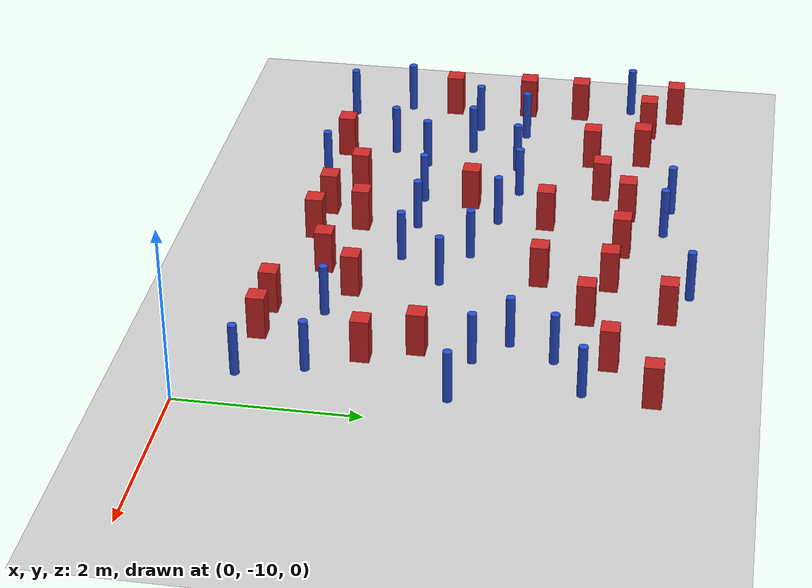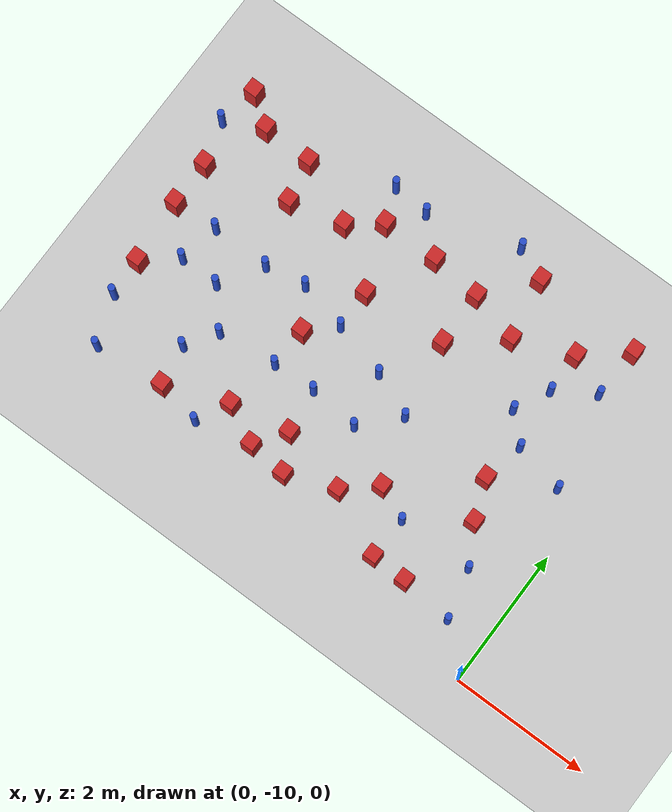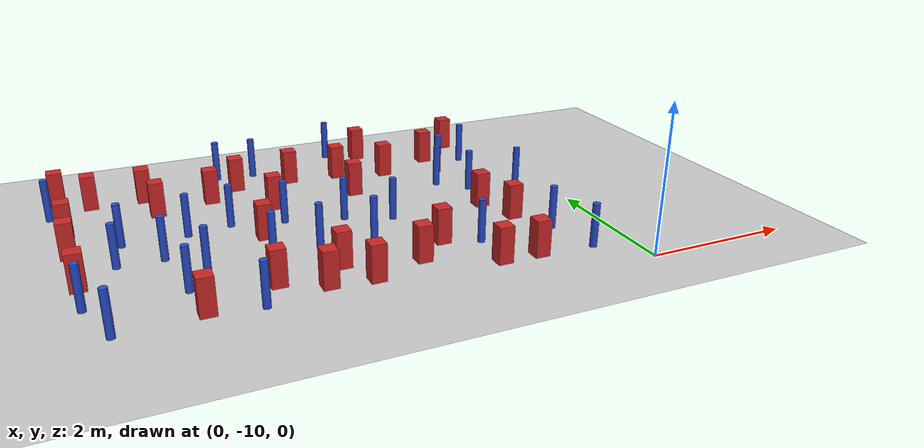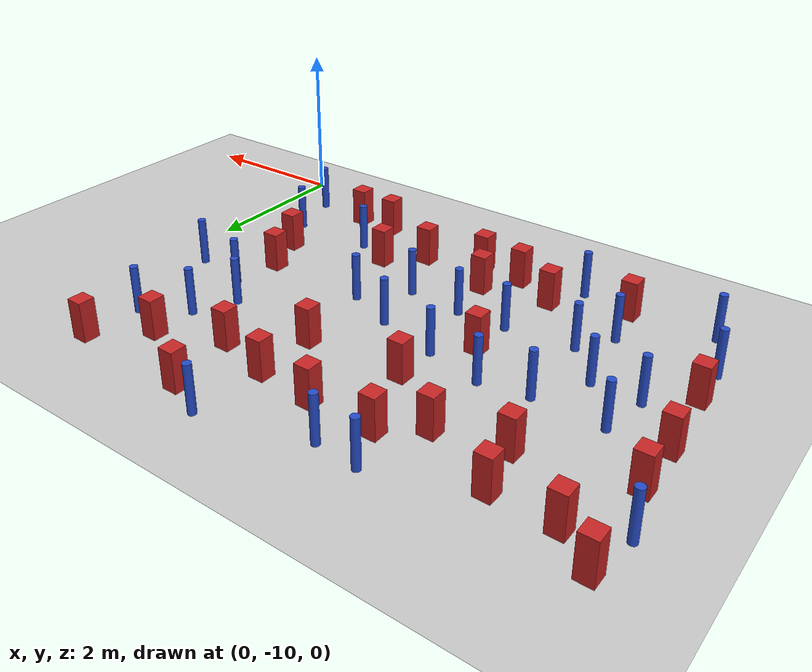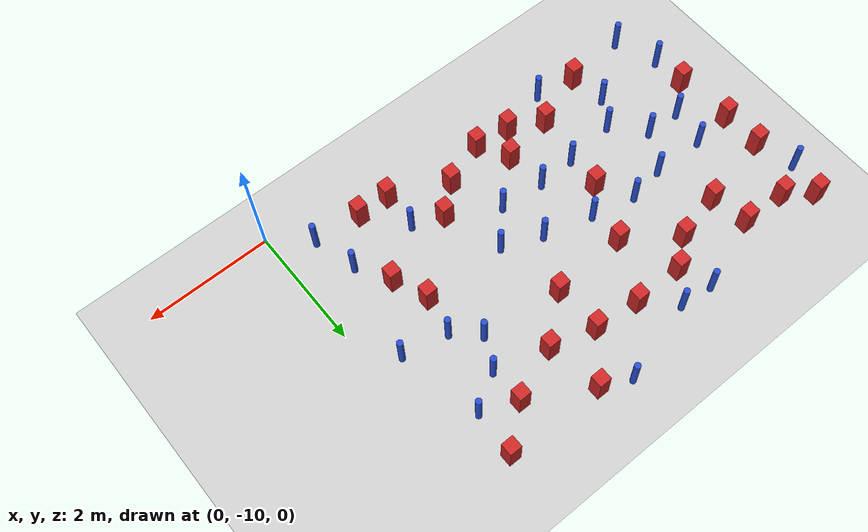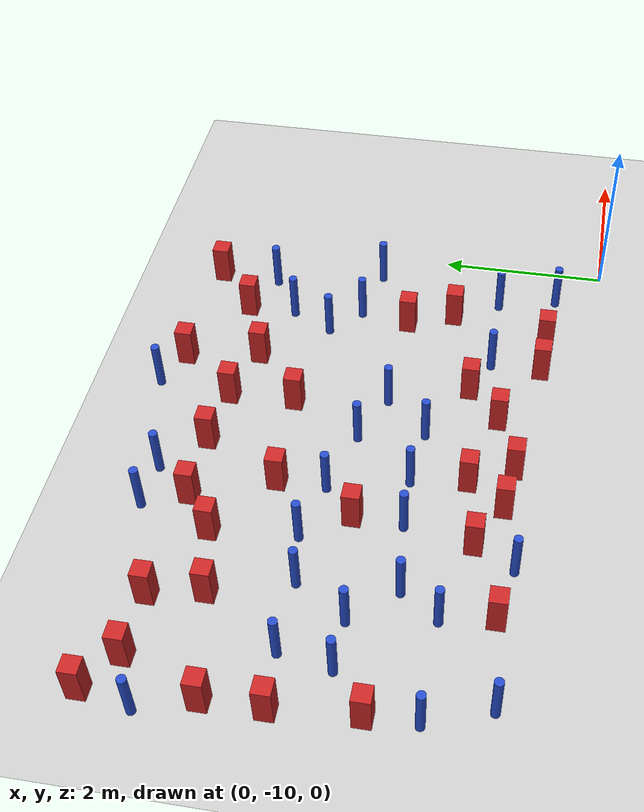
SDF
<sdf version="1.6">
 <world name="default">
  <model name="ground_plane">
   <static>1</static>
   <link name="link">
    <collision name="collision">
     <geometry><plane><normal>0 0 1</normal><size>100 100</size></plane></geometry>
     <surface><friction><ode><mu>100</mu><mu2>50</mu2></ode></friction></surface>
    </collision>
    <visual name="visual">
     <cast_shadows>0</cast_shadows>
     <geometry><plane><normal>0 0 1</normal><size>100 100</size></plane></geometry>
     <material>
      <ambient>1.0 1.0 1.0 1.0</ambient>
      <diffuse>0.8 0.8 0.8 1.0</diffuse>
      <specular>0.01 0.01 0.01 1.000000</specular>
     </material>
    </visual>
   </link>
  </model>
  <model name="square_post_obstacle0">
   <static>true</static>
   <pose>-2.72196914421 -8.94715219982 1.91545236811e-07 -7.35059704564e-06 1.12565212e-07 2.39332434364e-05</pose>
   <link name="link">
    <pose>0 0 0.25 0 -0 0</pose>
    <inertial>
     <mass>100</mass>
     <inertia>
      <ixx>0.166667</ixx>
      <ixy>0</ixy>
      <ixz>0</ixz>
      <iyy>0.166667</iyy>
      <iyz>0</iyz>
      <izz>0.166667</izz>
     </inertia>
    </inertial>
    <collision name="collision"><geometry><box><size>.2 .2 .5</size></box></geometry></collision>
    <visual name="visual">
     <geometry><box><size>.2 .2 .5</size></box></geometry>
     <material>
      <script><name>Gazebo/Red</name><uri>file://media/materials/scripts/gazebo.material</uri></script>
     </material>
    </visual>
   </link>
  </model>
  <model name="pole_obstacle1">
   <static>true</static>
   <pose>-4.78363985501 -9.33269308736 7.38925637345e-09 -8.471706928e-08 1.24976765081e-08 -1.74513093015e-07</pose>
   <link name="link">
    <pose>0 0 0.3 0 -0 0</pose>
    <inertial>
     <mass>1</mass>
     <inertia><ixx>0.145833</ixx><ixy>0</ixy><ixz>0</ixz><iyy>0.145833</iyy><iyz>0</iyz><izz>0.125</izz></inertia>
    </inertial>
    <collision name="collision">
     <geometry><cylinder><radius>0.05</radius><length>.6</length></cylinder></geometry>
    </collision>
    <visual name="visual">
     <geometry><cylinder><radius>0.05</radius><length>.6</length></cylinder></geometry>
     <material>
      <script><name>Gazebo/Blue</name><uri>file://media/materials/scripts/gazebo.material</uri></script>
     </material>
    </visual>
   </link>
  </model>
  <model name="square_post_obstacle4">
   <static>true</static>
   <pose>-2.28867185093 -8.56511000376 1.91545236811e-07 -7.35059704564e-06 1.12565212e-07 2.39332434364e-05</pose>
   <link name="link">
    <pose>0 0 0.25 0 -0 0</pose>
    <inertial>
     <mass>100</mass>
     <inertia>
      <ixx>0.166667</ixx>
      <ixy>0</ixy>
      <ixz>0</ixz>
      <iyy>0.166667</iyy>
      <iyz>0</iyz>
      <izz>0.166667</izz>
     </inertia>
    </inertial>
    <collision name="collision"><geometry><box><size>.2 .2 .5</size></box></geometry></collision>
    <visual name="visual">
     <geometry><box><size>.2 .2 .5</size></box></geometry>
     <material>
      <script><name>Gazebo/Red</name><uri>file://media/materials/scripts/gazebo.material</uri></script>
     </material>
    </visual>
   </link>
  </model>
  <model name="pole_obstacle6">
   <static>true</static>
   <pose>-5.66873293021 -7.7020765996 7.38925637345e-09 -8.47170692796e-08 1.24976764786e-08 -1.74513093032e-07</pose>
   <link name="link">
    <pose>0 0 0.3 0 -0 0</pose>
    <inertial>
     <mass>1</mass>
     <inertia><ixx>0.145833</ixx><ixy>0</ixy><ixz>0</ixz><iyy>0.145833</iyy><iyz>0</iyz><izz>0.125</izz></inertia>
    </inertial>
    <collision name="collision">
     <geometry><cylinder><radius>0.05</radius><length>.6</length></cylinder></geometry>
    </collision>
    <visual name="visual">
     <geometry><cylinder><radius>0.05</radius><length>.6</length></cylinder></geometry>
     <material>
      <script><name>Gazebo/Blue</name><uri>file://media/materials/scripts/gazebo.material</uri></script>
     </material>
    </visual>
   </link>
  </model>
  <model name="square_post_obstacle9">
   <static>true</static>
   <pose>-1.83106728129 -9.37195431687 1.91545236811e-07 -7.35059704564e-06 1.12565212e-07 2.39332434364e-05</pose>
   <link name="link">
    <pose>0 0 0.25 0 -0 0</pose>
    <inertial>
     <mass>100</mass>
     <inertia>
      <ixx>0.166667</ixx>
      <ixy>0</ixy>
      <ixz>0</ixz>
      <iyy>0.166667</iyy>
      <iyz>0</iyz>
      <izz>0.166667</izz>
     </inertia>
    </inertial>
    <collision name="collision"><geometry><box><size>.2 .2 .5</size></box></geometry></collision>
    <visual name="visual">
     <geometry><box><size>.2 .2 .5</size></box></geometry>
     <material>
      <script><name>Gazebo/Red</name><uri>file://media/materials/scripts/gazebo.material</uri></script>
     </material>
    </visual>
   </link>
  </model>
  <model name="square_post_obstacle17">
   <static>true</static>
   <pose>-2.24844355301 -5.09677401196 1.91545236811e-07 -7.35059704564e-06 1.12565212e-07 2.39332434364e-05</pose>
   <link name="link">
    <pose>0 0 0.25 0 -0 0</pose>
    <inertial>
     <mass>100</mass>
     <inertia>
      <ixx>0.166667</ixx>
      <ixy>0</ixy>
      <ixz>0</ixz>
      <iyy>0.166667</iyy>
      <iyz>0</iyz>
      <izz>0.166667</izz>
     </inertia>
    </inertial>
    <collision name="collision"><geometry><box><size>.2 .2 .5</size></box></geometry></collision>
    <visual name="visual">
     <geometry><box><size>.2 .2 .5</size></box></geometry>
     <material>
      <script><name>Gazebo/Red</name><uri>file://media/materials/scripts/gazebo.material</uri></script>
     </material>
    </visual>
   </link>
  </model>
  <model name="square_post_obstacle19">
   <static>true</static>
   <pose>-3.42885709103 -9.20270909468 1.91545236811e-07 -7.35059704564e-06 1.12565212e-07 2.39332434364e-05</pose>
   <link name="link">
    <pose>0 0 0.25 0 -0 0</pose>
    <inertial>
     <mass>100</mass>
     <inertia>
      <ixx>0.166667</ixx>
      <ixy>0</ixy>
      <ixz>0</ixz>
      <iyy>0.166667</iyy>
      <iyz>0</iyz>
      <izz>0.166667</izz>
     </inertia>
    </inertial>
    <collision name="collision"><geometry><box><size>.2 .2 .5</size></box></geometry></collision>
    <visual name="visual">
     <geometry><box><size>.2 .2 .5</size></box></geometry>
     <material>
      <script><name>Gazebo/Red</name><uri>file://media/materials/scripts/gazebo.material</uri></script>
     </material>
    </visual>
   </link>
  </model>
  <model name="square_post_obstacle20">
   <static>true</static>
   <pose>-6.6940815268 -8.06986607838 1.91545236811e-07 -7.35059704564e-06 1.12565212e-07 2.39332434364e-05</pose>
   <link name="link">
    <pose>0 0 0.25 0 -0 0</pose>
    <inertial>
     <mass>100</mass>
     <inertia>
      <ixx>0.166667</ixx>
      <ixy>0</ixy>
      <ixz>0</ixz>
      <iyy>0.166667</iyy>
      <iyz>0</iyz>
      <izz>0.166667</izz>
     </inertia>
    </inertial>
    <collision name="collision"><geometry><box><size>.2 .2 .5</size></box></geometry></collision>
    <visual name="visual">
     <geometry><box><size>.2 .2 .5</size></box></geometry>
     <material>
      <script><name>Gazebo/Red</name><uri>file://media/materials/scripts/gazebo.material</uri></script>
     </material>
    </visual>
   </link>
  </model>
  <model name="pole_obstacle13">
   <static>true</static>
   <pose>-4.0118841569 -5.26021638834 7.38925637345e-09 -8.47170692795e-08 1.24976764731e-08 -1.74513093035e-07</pose>
   <link name="link">
    <pose>0 0 0.3 0 -0 0</pose>
    <inertial>
     <mass>1</mass>
     <inertia><ixx>0.145833</ixx><ixy>0</ixy><ixz>0</ixz><iyy>0.145833</iyy><iyz>0</iyz><izz>0.125</izz></inertia>
    </inertial>
    <collision name="collision">
     <geometry><cylinder><radius>0.05</radius><length>.6</length></cylinder></geometry>
    </collision>
    <visual name="visual">
     <geometry><cylinder><radius>0.05</radius><length>.6</length></cylinder></geometry>
     <material>
      <script><name>Gazebo/Blue</name><uri>file://media/materials/scripts/gazebo.material</uri></script>
     </material>
    </visual>
   </link>
  </model>
  <model name="pole_obstacle15">
   <static>true</static>
   <pose>-3.21810793898 -7.3811355036 7.38925637345e-09 -8.47170692798e-08 1.24976765033e-08 -1.74513093019e-07</pose>
   <link name="link">
    <pose>0 0 0.3 0 -0 0</pose>
    <inertial>
     <mass>1</mass>
     <inertia><ixx>0.145833</ixx><ixy>0</ixy><ixz>0</ixz><iyy>0.145833</iyy><iyz>0</iyz><izz>0.125</izz></inertia>
    </inertial>
    <collision name="collision">
     <geometry><cylinder><radius>0.05</radius><length>.6</length></cylinder></geometry>
    </collision>
    <visual name="visual">
     <geometry><cylinder><radius>0.05</radius><length>.6</length></cylinder></geometry>
     <material>
      <script><name>Gazebo/Blue</name><uri>file://media/materials/scripts/gazebo.material</uri></script>
     </material>
    </visual>
   </link>
  </model>
  <model name="square_post_obstacle28">
   <static>true</static>
   <pose>-3.69104131438 -8.71325442709 1.91545236811e-07 -7.35059704564e-06 1.12565212e-07 2.39332434364e-05</pose>
   <link name="link">
    <pose>0 0 0.25 0 -0 0</pose>
    <inertial>
     <mass>100</mass>
     <inertia>
      <ixx>0.166667</ixx>
      <ixy>0</ixy>
      <ixz>0</ixz>
      <iyy>0.166667</iyy>
      <iyz>0</iyz>
      <izz>0.166667</izz>
     </inertia>
    </inertial>
    <collision name="collision"><geometry><box><size>.2 .2 .5</size></box></geometry></collision>
    <visual name="visual">
     <geometry><box><size>.2 .2 .5</size></box></geometry>
     <material>
      <script><name>Gazebo/Red</name><uri>file://media/materials/scripts/gazebo.material</uri></script>
     </material>
    </visual>
   </link>
  </model>
  <model name="pole_obstacle31">
   <static>true</static>
   <pose>-1.14555180863 -7.06398034001 7.38925637345e-09 -8.47170692799e-08 1.24976765033e-08 -1.74513093018e-07</pose>
   <link name="link">
    <pose>0 0 0.3 0 -0 0</pose>
    <inertial>
     <mass>1</mass>
     <inertia><ixx>0.145833</ixx><ixy>0</ixy><ixz>0</ixz><iyy>0.145833</iyy><iyz>0</iyz><izz>0.125</izz></inertia>
    </inertial>
    <collision name="collision">
     <geometry><cylinder><radius>0.05</radius><length>.6</length></cylinder></geometry>
    </collision>
    <visual name="visual">
     <geometry><cylinder><radius>0.05</radius><length>.6</length></cylinder></geometry>
     <material>
      <script><name>Gazebo/Blue</name><uri>file://media/materials/scripts/gazebo.material</uri></script>
     </material>
    </visual>
   </link>
  </model>
  <model name="pole_obstacle36">
   <static>true</static>
   <pose>-1.26735621203 -6.21670635428 7.38925637345e-09 -8.47170692799e-08 1.24976765033e-08 -1.74513093018e-07</pose>
   <link name="link">
    <pose>0 0 0.3 0 -0 0</pose>
    <inertial>
     <mass>1</mass>
     <inertia><ixx>0.145833</ixx><ixy>0</ixy><ixz>0</ixz><iyy>0.145833</iyy><iyz>0</iyz><izz>0.125</izz></inertia>
    </inertial>
    <collision name="collision">
     <geometry><cylinder><radius>0.05</radius><length>.6</length></cylinder></geometry>
    </collision>
    <visual name="visual">
     <geometry><cylinder><radius>0.05</radius><length>.6</length></cylinder></geometry>
     <material>
      <script><name>Gazebo/Blue</name><uri>file://media/materials/scripts/gazebo.material</uri></script>
     </material>
    </visual>
   </link>
  </model>
  <model name="square_post_obstacle39">
   <static>true</static>
   <pose>-0.693819695656 -5.1502826747 1.91545236811e-07 -7.35059704564e-06 1.12565212e-07 2.39332434364e-05</pose>
   <link name="link">
    <pose>0 0 0.25 0 -0 0</pose>
    <inertial>
     <mass>100</mass>
     <inertia>
      <ixx>0.166667</ixx>
      <ixy>0</ixy>
      <ixz>0</ixz>
      <iyy>0.166667</iyy>
      <iyz>0</iyz>
      <izz>0.166667</izz>
     </inertia>
    </inertial>
    <collision name="collision"><geometry><box><size>.2 .2 .5</size></box></geometry></collision>
    <visual name="visual">
     <geometry><box><size>.2 .2 .5</size></box></geometry>
     <material>
      <script><name>Gazebo/Red</name><uri>file://media/materials/scripts/gazebo.material</uri></script>
     </material>
    </visual>
   </link>
  </model>
  <model name="pole_obstacle40">
   <static>true</static>
   <pose>-6.42894816302 -9.30552408685 7.38925637345e-09 -8.471706928e-08 1.24976765081e-08 -1.74513093015e-07</pose>
   <link name="link">
    <pose>0 0 0.3 0 -0 0</pose>
    <inertial>
     <mass>1</mass>
     <inertia><ixx>0.145833</ixx><ixy>0</ixy><ixz>0</ixz><iyy>0.145833</iyy><iyz>0</iyz><izz>0.125</izz></inertia>
    </inertial>
    <collision name="collision">
     <geometry><cylinder><radius>0.05</radius><length>.6</length></cylinder></geometry>
    </collision>
    <visual name="visual">
     <geometry><cylinder><radius>0.05</radius><length>.6</length></cylinder></geometry>
     <material>
      <script><name>Gazebo/Blue</name><uri>file://media/materials/scripts/gazebo.material</uri></script>
     </material>
    </visual>
   </link>
  </model>
  <model name="square_post_obstacle48">
   <static>true</static>
   <pose>-6.77740608682 -6.49136869371 1.91545236811e-07 -7.35059704564e-06 1.12565212e-07 2.39332434364e-05</pose>
   <link name="link">
    <pose>0 0 0.25 0 -0 0</pose>
    <inertial>
     <mass>100</mass>
     <inertia>
      <ixx>0.166667</ixx>
      <ixy>0</ixy>
      <ixz>0</ixz>
      <iyy>0.166667</iyy>
      <iyz>0</iyz>
      <izz>0.166667</izz>
     </inertia>
    </inertial>
    <collision name="collision"><geometry><box><size>.2 .2 .5</size></box></geometry></collision>
    <visual name="visual">
     <geometry><box><size>.2 .2 .5</size></box></geometry>
     <material>
      <script><name>Gazebo/Red</name><uri>file://media/materials/scripts/gazebo.material</uri></script>
     </material>
    </visual>
   </link>
  </model>
  <model name="pole_obstacle47">
   <static>true</static>
   <pose>-0.740221314403 -8.75654700986 7.38925637345e-09 -8.47170692797e-08 1.249767648e-08 -1.74513093032e-07</pose>
   <link name="link">
    <pose>0 0 0.3 0 -0 0</pose>
    <inertial>
     <mass>1</mass>
     <inertia><ixx>0.145833</ixx><ixy>0</ixy><ixz>0</ixz><iyy>0.145833</iyy><iyz>0</iyz><izz>0.125</izz></inertia>
    </inertial>
    <collision name="collision">
     <geometry><cylinder><radius>0.05</radius><length>.6</length></cylinder></geometry>
    </collision>
    <visual name="visual">
     <geometry><cylinder><radius>0.05</radius><length>.6</length></cylinder></geometry>
     <material>
      <script><name>Gazebo/Blue</name><uri>file://media/materials/scripts/gazebo.material</uri></script>
     </material>
    </visual>
   </link>
  </model>
  <model name="square_post_obstacle50">
   <static>true</static>
   <pose>-2.09786085414 -5.96816820393 1.91545236811e-07 -7.35059704564e-06 1.12565212e-07 2.39332434364e-05</pose>
   <link name="link">
    <pose>0 0 0.25 0 -0 0</pose>
    <inertial>
     <mass>100</mass>
     <inertia>
      <ixx>0.166667</ixx>
      <ixy>0</ixy>
      <ixz>0</ixz>
      <iyy>0.166667</iyy>
      <iyz>0</iyz>
      <izz>0.166667</izz>
     </inertia>
    </inertial>
    <collision name="collision"><geometry><box><size>.2 .2 .5</size></box></geometry></collision>
    <visual name="visual">
     <geometry><box><size>.2 .2 .5</size></box></geometry>
     <material>
      <script><name>Gazebo/Red</name><uri>file://media/materials/scripts/gazebo.material</uri></script>
     </material>
    </visual>
   </link>
  </model>
  <model name="square_post_obstacle60">
   <static>true</static>
   <pose>-4.37206402972 -7.53474636108 1.91545236811e-07 -7.35059704564e-06 1.12565212e-07 2.39332434364e-05</pose>
   <link name="link">
    <pose>0 0 0.25 0 -0 0</pose>
    <inertial>
     <mass>100</mass>
     <inertia>
      <ixx>0.166667</ixx>
      <ixy>0</ixy>
      <ixz>0</ixz>
      <iyy>0.166667</iyy>
      <iyz>0</iyz>
      <izz>0.166667</izz>
     </inertia>
    </inertial>
    <collision name="collision"><geometry><box><size>.2 .2 .5</size></box></geometry></collision>
    <visual name="visual">
     <geometry><box><size>.2 .2 .5</size></box></geometry>
     <material>
      <script><name>Gazebo/Red</name><uri>file://media/materials/scripts/gazebo.material</uri></script>
     </material>
    </visual>
   </link>
  </model>
  <model name="pole_obstacle56">
   <static>true</static>
   <pose>-5.51816700447 -8.62988380665 7.38925637345e-09 -8.471706928e-08 1.24976765081e-08 -1.74513093015e-07</pose>
   <link name="link">
    <pose>0 0 0.3 0 -0 0</pose>
    <inertial>
     <mass>1</mass>
     <inertia><ixx>0.145833</ixx><ixy>0</ixy><ixz>0</ixz><iyy>0.145833</iyy><iyz>0</iyz><izz>0.125</izz></inertia>
    </inertial>
    <collision name="collision">
     <geometry><cylinder><radius>0.05</radius><length>.6</length></cylinder></geometry>
    </collision>
    <visual name="visual">
     <geometry><cylinder><radius>0.05</radius><length>.6</length></cylinder></geometry>
     <material>
      <script><name>Gazebo/Blue</name><uri>file://media/materials/scripts/gazebo.material</uri></script>
     </material>
    </visual>
   </link>
  </model>
  <model name="pole_obstacle66">
   <static>true</static>
   <pose>-6.13446127819 -7.09908126856 7.38925637345e-09 -8.47170692796e-08 1.24976764786e-08 -1.74513093032e-07</pose>
   <link name="link">
    <pose>0 0 0.3 0 -0 0</pose>
    <inertial>
     <mass>1</mass>
     <inertia><ixx>0.145833</ixx><ixy>0</ixy><ixz>0</ixz><iyy>0.145833</iyy><iyz>0</iyz><izz>0.125</izz></inertia>
    </inertial>
    <collision name="collision">
     <geometry><cylinder><radius>0.05</radius><length>.6</length></cylinder></geometry>
    </collision>
    <visual name="visual">
     <geometry><cylinder><radius>0.05</radius><length>.6</length></cylinder></geometry>
     <material>
      <script><name>Gazebo/Blue</name><uri>file://media/materials/scripts/gazebo.material</uri></script>
     </material>
    </visual>
   </link>
  </model>
  <model name="square_post_obstacle71">
   <static>true</static>
   <pose>-1.04512771737 -8.21962883002 1.91545236811e-07 -7.35059704564e-06 1.12565212e-07 2.39332434364e-05</pose>
   <link name="link">
    <pose>0 0 0.25 0 -0 0</pose>
    <inertial>
     <mass>100</mass>
     <inertia>
      <ixx>0.166667</ixx>
      <ixy>0</ixy>
      <ixz>0</ixz>
      <iyy>0.166667</iyy>
      <iyz>0</iyz>
      <izz>0.166667</izz>
     </inertia>
    </inertial>
    <collision name="collision"><geometry><box><size>.2 .2 .5</size></box></geometry></collision>
    <visual name="visual">
     <geometry><box><size>.2 .2 .5</size></box></geometry>
     <material>
      <script><name>Gazebo/Red</name><uri>file://media/materials/scripts/gazebo.material</uri></script>
     </material>
    </visual>
   </link>
  </model>
  <model name="pole_obstacle73">
   <static>true</static>
   <pose>-3.06195480105 -8.14059157445 7.38925637345e-09 -8.47170692793e-08 1.24976764408e-08 -1.74513093041e-07</pose>
   <link name="link">
    <pose>0 0 0.3 0 -0 0</pose>
    <inertial>
     <mass>1</mass>
     <inertia><ixx>0.145833</ixx><ixy>0</ixy><ixz>0</ixz><iyy>0.145833</iyy><iyz>0</iyz><izz>0.125</izz></inertia>
    </inertial>
    <collision name="collision">
     <geometry><cylinder><radius>0.05</radius><length>.6</length></cylinder></geometry>
    </collision>
    <visual name="visual">
     <geometry><cylinder><radius>0.05</radius><length>.6</length></cylinder></geometry>
     <material>
      <script><name>Gazebo/Blue</name><uri>file://media/materials/scripts/gazebo.material</uri></script>
     </material>
    </visual>
   </link>
  </model>
  <model name="pole_obstacle74">
   <static>true</static>
   <pose>-6.68043540935 -8.61693651098 7.38925637345e-09 -8.471706928e-08 1.24976765081e-08 -1.74513093015e-07</pose>
   <link name="link">
    <pose>0 0 0.3 0 -0 0</pose>
    <inertial>
     <mass>1</mass>
     <inertia><ixx>0.145833</ixx><ixy>0</ixy><ixz>0</ixz><iyy>0.145833</iyy><iyz>0</iyz><izz>0.125</izz></inertia>
    </inertial>
    <collision name="collision">
     <geometry><cylinder><radius>0.05</radius><length>.6</length></cylinder></geometry>
    </collision>
    <visual name="visual">
     <geometry><cylinder><radius>0.05</radius><length>.6</length></cylinder></geometry>
     <material>
      <script><name>Gazebo/Blue</name><uri>file://media/materials/scripts/gazebo.material</uri></script>
     </material>
    </visual>
   </link>
  </model>
  <model name="pole_obstacle88">
   <static>true</static>
   <pose>-0.556615651393 -9.45947690366 7.38925637345e-09 -8.47170692797e-08 1.249767648e-08 -1.74513093032e-07</pose>
   <link name="link">
    <pose>0 0 0.3 0 -0 0</pose>
    <inertial>
     <mass>1</mass>
     <inertia><ixx>0.145833</ixx><ixy>0</ixy><ixz>0</ixz><iyy>0.145833</iyy><iyz>0</iyz><izz>0.125</izz></inertia>
    </inertial>
    <collision name="collision">
     <geometry><cylinder><radius>0.05</radius><length>.6</length></cylinder></geometry>
    </collision>
    <visual name="visual">
     <geometry><cylinder><radius>0.05</radius><length>.6</length></cylinder></geometry>
     <material>
      <script><name>Gazebo/Blue</name><uri>file://media/materials/scripts/gazebo.material</uri></script>
     </material>
    </visual>
   </link>
  </model>
  <model name="square_post_obstacle84">
   <static>true</static>
   <pose>-5.68699828333 -5.63364199121 1.91545236811e-07 -7.35059704564e-06 1.12565212e-07 2.39332434364e-05</pose>
   <link name="link">
    <pose>0 0 0.25 0 -0 0</pose>
    <inertial>
     <mass>100</mass>
     <inertia>
      <ixx>0.166667</ixx>
      <ixy>0</ixy>
      <ixz>0</ixz>
      <iyy>0.166667</iyy>
      <iyz>0</iyz>
      <izz>0.166667</izz>
     </inertia>
    </inertial>
    <collision name="collision"><geometry><box><size>.2 .2 .5</size></box></geometry></collision>
    <visual name="visual">
     <geometry><box><size>.2 .2 .5</size></box></geometry>
     <material>
      <script><name>Gazebo/Red</name><uri>file://media/materials/scripts/gazebo.material</uri></script>
     </material>
    </visual>
   </link>
  </model>
  <model name="pole_obstacle101">
   <static>true</static>
   <pose>-1.81310328395 -8.76857615775 7.38925637345e-09 -8.47170692798e-08 1.24976764881e-08 -1.74513093027e-07</pose>
   <link name="link">
    <pose>0 0 0.3 0 -0 0</pose>
    <inertial>
     <mass>1</mass>
     <inertia><ixx>0.145833</ixx><ixy>0</ixy><ixz>0</ixz><iyy>0.145833</iyy><iyz>0</iyz><izz>0.125</izz></inertia>
    </inertial>
    <collision name="collision">
     <geometry><cylinder><radius>0.05</radius><length>.6</length></cylinder></geometry>
    </collision>
    <visual name="visual">
     <geometry><cylinder><radius>0.05</radius><length>.6</length></cylinder></geometry>
     <material>
      <script><name>Gazebo/Blue</name><uri>file://media/materials/scripts/gazebo.material</uri></script>
     </material>
    </visual>
   </link>
  </model>
  <model name="square_post_obstacle91">
   <static>true</static>
   <pose>-5.56886369131 -6.23167628847 1.91545236811e-07 -7.35059704564e-06 1.12565212e-07 2.39332434364e-05</pose>
   <link name="link">
    <pose>0 0 0.25 0 -0 0</pose>
    <inertial>
     <mass>100</mass>
     <inertia>
      <ixx>0.166667</ixx>
      <ixy>0</ixy>
      <ixz>0</ixz>
      <iyy>0.166667</iyy>
      <iyz>0</iyz>
      <izz>0.166667</izz>
     </inertia>
    </inertial>
    <collision name="collision"><geometry><box><size>.2 .2 .5</size></box></geometry></collision>
    <visual name="visual">
     <geometry><box><size>.2 .2 .5</size></box></geometry>
     <material>
      <script><name>Gazebo/Red</name><uri>file://media/materials/scripts/gazebo.material</uri></script>
     </material>
    </visual>
   </link>
  </model>
  <model name="square_post_obstacle96">
   <static>true</static>
   <pose>-1.28138069714 -5.64459968056 1.91545236811e-07 -7.35059704564e-06 1.12565212e-07 2.39332434364e-05</pose>
   <link name="link">
    <pose>0 0 0.25 0 -0 0</pose>
    <inertial>
     <mass>100</mass>
     <inertia>
      <ixx>0.166667</ixx>
      <ixy>0</ixy>
      <ixz>0</ixz>
      <iyy>0.166667</iyy>
      <iyz>0</iyz>
      <izz>0.166667</izz>
     </inertia>
    </inertial>
    <collision name="collision"><geometry><box><size>.2 .2 .5</size></box></geometry></collision>
    <visual name="visual">
     <geometry><box><size>.2 .2 .5</size></box></geometry>
     <material>
      <script><name>Gazebo/Red</name><uri>file://media/materials/scripts/gazebo.material</uri></script>
     </material>
    </visual>
   </link>
  </model>
  <model name="pole_obstacle114">
   <static>true</static>
   <pose>-4.55017267732 -5.20977658634 7.38925637345e-09 -8.47170692796e-08 1.24976764786e-08 -1.74513093032e-07</pose>
   <link name="link">
    <pose>0 0 0.3 0 -0 0</pose>
    <inertial>
     <mass>1</mass>
     <inertia><ixx>0.145833</ixx><ixy>0</ixy><ixz>0</ixz><iyy>0.145833</iyy><iyz>0</iyz><izz>0.125</izz></inertia>
    </inertial>
    <collision name="collision">
     <geometry><cylinder><radius>0.05</radius><length>.6</length></cylinder></geometry>
    </collision>
    <visual name="visual">
     <geometry><cylinder><radius>0.05</radius><length>.6</length></cylinder></geometry>
     <material>
      <script><name>Gazebo/Blue</name><uri>file://media/materials/scripts/gazebo.material</uri></script>
     </material>
    </visual>
   </link>
  </model>
  <model name="square_post_obstacle108">
   <static>true</static>
   <pose>-2.78992549723 -6.55095592552 1.91545236811e-07 -7.35059704564e-06 1.12565212e-07 2.39332434364e-05</pose>
   <link name="link">
    <pose>0 0 0.25 0 -0 0</pose>
    <inertial>
     <mass>100</mass>
     <inertia>
      <ixx>0.166667</ixx>
      <ixy>0</ixy>
      <ixz>0</ixz>
      <iyy>0.166667</iyy>
      <iyz>0</iyz>
      <izz>0.166667</izz>
     </inertia>
    </inertial>
    <collision name="collision"><geometry><box><size>.2 .2 .5</size></box></geometry></collision>
    <visual name="visual">
     <geometry><box><size>.2 .2 .5</size></box></geometry>
     <material>
      <script><name>Gazebo/Red</name><uri>file://media/materials/scripts/gazebo.material</uri></script>
     </material>
    </visual>
   </link>
  </model>
  <model name="square_post_obstacle114">
   <static>true</static>
   <pose>-1.31544810828 -9.38611326668 1.91545236811e-07 -7.35059704564e-06 1.12565212e-07 2.39332434364e-05</pose>
   <link name="link">
    <pose>0 0 0.25 0 -0 0</pose>
    <inertial>
     <mass>100</mass>
     <inertia>
      <ixx>0.166667</ixx>
      <ixy>0</ixy>
      <ixz>0</ixz>
      <iyy>0.166667</iyy>
      <iyz>0</iyz>
      <izz>0.166667</izz>
     </inertia>
    </inertial>
    <collision name="collision"><geometry><box><size>.2 .2 .5</size></box></geometry></collision>
    <visual name="visual">
     <geometry><box><size>.2 .2 .5</size></box></geometry>
     <material>
      <script><name>Gazebo/Red</name><uri>file://media/materials/scripts/gazebo.material</uri></script>
     </material>
    </visual>
   </link>
  </model>
  <model name="square_post_obstacle119">
   <static>true</static>
   <pose>-3.9953772598 -9.14286721304 1.91545236811e-07 -7.35059704564e-06 1.12565212e-07 2.39332434364e-05</pose>
   <link name="link">
    <pose>0 0 0.25 0 -0 0</pose>
    <inertial>
     <mass>100</mass>
     <inertia>
      <ixx>0.166667</ixx>
      <ixy>0</ixy>
      <ixz>0</ixz>
      <iyy>0.166667</iyy>
      <iyz>0</iyz>
      <izz>0.166667</izz>
     </inertia>
    </inertial>
    <collision name="collision"><geometry><box><size>.2 .2 .5</size></box></geometry></collision>
    <visual name="visual">
     <geometry><box><size>.2 .2 .5</size></box></geometry>
     <material>
      <script><name>Gazebo/Red</name><uri>file://media/materials/scripts/gazebo.material</uri></script>
     </material>
    </visual>
   </link>
  </model>
  <model name="square_post_obstacle123">
   <static>true</static>
   <pose>-4.35754446085 -5.70779764652 1.91545236811e-07 -7.35059704564e-06 1.12565212e-07 2.39332434364e-05</pose>
   <link name="link">
    <pose>0 0 0.25 0 -0 0</pose>
    <inertial>
     <mass>100</mass>
     <inertia>
      <ixx>0.166667</ixx>
      <ixy>0</ixy>
      <ixz>0</ixz>
      <iyy>0.166667</iyy>
      <iyz>0</iyz>
      <izz>0.166667</izz>
     </inertia>
    </inertial>
    <collision name="collision"><geometry><box><size>.2 .2 .5</size></box></geometry></collision>
    <visual name="visual">
     <geometry><box><size>.2 .2 .5</size></box></geometry>
     <material>
      <script><name>Gazebo/Red</name><uri>file://media/materials/scripts/gazebo.material</uri></script>
     </material>
    </visual>
   </link>
  </model>
  <model name="square_post_obstacle129">
   <static>true</static>
   <pose>-4.53763030978 -8.87419193204 1.91545236811e-07 -7.35059704564e-06 1.12565212e-07 2.39332434364e-05</pose>
   <link name="link">
    <pose>0 0 0.25 0 -0 0</pose>
    <inertial>
     <mass>100</mass>
     <inertia>
      <ixx>0.166667</ixx>
      <ixy>0</ixy>
      <ixz>0</ixz>
      <iyy>0.166667</iyy>
      <iyz>0</iyz>
      <izz>0.166667</izz>
     </inertia>
    </inertial>
    <collision name="collision"><geometry><box><size>.2 .2 .5</size></box></geometry></collision>
    <visual name="visual">
     <geometry><box><size>.2 .2 .5</size></box></geometry>
     <material>
      <script><name>Gazebo/Red</name><uri>file://media/materials/scripts/gazebo.material</uri></script>
     </material>
    </visual>
   </link>
  </model>
  <model name="pole_obstacle152">
   <static>true</static>
   <pose>-1.51429000628 -6.71083082076 7.38925637345e-09 -8.47170692799e-08 1.24976765033e-08 -1.74513093018e-07</pose>
   <link name="link">
    <pose>0 0 0.3 0 -0 0</pose>
    <inertial>
     <mass>1</mass>
     <inertia><ixx>0.145833</ixx><ixy>0</ixy><ixz>0</ixz><iyy>0.145833</iyy><iyz>0</iyz><izz>0.125</izz></inertia>
    </inertial>
    <collision name="collision">
     <geometry><cylinder><radius>0.05</radius><length>.6</length></cylinder></geometry>
    </collision>
    <visual name="visual">
     <geometry><cylinder><radius>0.05</radius><length>.6</length></cylinder></geometry>
     <material>
      <script><name>Gazebo/Blue</name><uri>file://media/materials/scripts/gazebo.material</uri></script>
     </material>
    </visual>
   </link>
  </model>
  <model name="square_post_obstacle144">
   <static>true</static>
   <pose>-1.26165663813 -7.66394850397 1.91545236811e-07 -7.35059704564e-06 1.12565212e-07 2.39332434364e-05</pose>
   <link name="link">
    <pose>0 0 0.25 0 -0 0</pose>
    <inertial>
     <mass>100</mass>
     <inertia>
      <ixx>0.166667</ixx>
      <ixy>0</ixy>
      <ixz>0</ixz>
      <iyy>0.166667</iyy>
      <iyz>0</iyz>
      <izz>0.166667</izz>
     </inertia>
    </inertial>
    <collision name="collision"><geometry><box><size>.2 .2 .5</size></box></geometry></collision>
    <visual name="visual">
     <geometry><box><size>.2 .2 .5</size></box></geometry>
     <material>
      <script><name>Gazebo/Red</name><uri>file://media/materials/scripts/gazebo.material</uri></script>
     </material>
    </visual>
   </link>
  </model>
  <model name="pole_obstacle157">
   <static>true</static>
   <pose>-2.59899847081 -7.63780321318 7.38925637345e-09 -8.47170692798e-08 1.24976765033e-08 -1.74513093019e-07</pose>
   <link name="link">
    <pose>0 0 0.3 0 -0 0</pose>
    <inertial>
     <mass>1</mass>
     <inertia><ixx>0.145833</ixx><ixy>0</ixy><ixz>0</ixz><iyy>0.145833</iyy><iyz>0</iyz><izz>0.125</izz></inertia>
    </inertial>
    <collision name="collision">
     <geometry><cylinder><radius>0.05</radius><length>.6</length></cylinder></geometry>
    </collision>
    <visual name="visual">
     <geometry><cylinder><radius>0.05</radius><length>.6</length></cylinder></geometry>
     <material>
      <script><name>Gazebo/Blue</name><uri>file://media/materials/scripts/gazebo.material</uri></script>
     </material>
    </visual>
   </link>
  </model>
  <model name="pole_obstacle158">
   <static>true</static>
   <pose>-0.42401617967 -7.21029493755 7.38925637345e-09 -8.471706928e-08 1.24976765079e-08 -1.74513093015e-07</pose>
   <link name="link">
    <pose>0 0 0.3 0 -0 0</pose>
    <inertial>
     <mass>1</mass>
     <inertia><ixx>0.145833</ixx><ixy>0</ixy><ixz>0</ixz><iyy>0.145833</iyy><iyz>0</iyz><izz>0.125</izz></inertia>
    </inertial>
    <collision name="collision">
     <geometry><cylinder><radius>0.05</radius><length>.6</length></cylinder></geometry>
    </collision>
    <visual name="visual">
     <geometry><cylinder><radius>0.05</radius><length>.6</length></cylinder></geometry>
     <material>
      <script><name>Gazebo/Blue</name><uri>file://media/materials/scripts/gazebo.material</uri></script>
     </material>
    </visual>
   </link>
  </model>
  <model name="pole_obstacle160">
   <static>true</static>
   <pose>-4.00481705344 -7.17178721838 7.38925637345e-09 -8.47170692795e-08 1.24976764731e-08 -1.74513093035e-07</pose>
   <link name="link">
    <pose>0 0 0.3 0 -0 0</pose>
    <inertial>
     <mass>1</mass>
     <inertia><ixx>0.145833</ixx><ixy>0</ixy><ixz>0</ixz><iyy>0.145833</iyy><iyz>0</iyz><izz>0.125</izz></inertia>
    </inertial>
    <collision name="collision">
     <geometry><cylinder><radius>0.05</radius><length>.6</length></cylinder></geometry>
    </collision>
    <visual name="visual">
     <geometry><cylinder><radius>0.05</radius><length>.6</length></cylinder></geometry>
     <material>
      <script><name>Gazebo/Blue</name><uri>file://media/materials/scripts/gazebo.material</uri></script>
     </material>
    </visual>
   </link>
  </model>
  <model name="pole_obstacle161">
   <static>true</static>
   <pose>-4.70905729855 -7.01128699865 7.38925637345e-09 -8.47170692796e-08 1.24976764786e-08 -1.74513093032e-07</pose>
   <link name="link">
    <pose>0 0 0.3 0 -0 0</pose>
    <inertial>
     <mass>1</mass>
     <inertia><ixx>0.145833</ixx><ixy>0</ixy><ixz>0</ixz><iyy>0.145833</iyy><iyz>0</iyz><izz>0.125</izz></inertia>
    </inertial>
    <collision name="collision">
     <geometry><cylinder><radius>0.05</radius><length>.6</length></cylinder></geometry>
    </collision>
    <visual name="visual">
     <geometry><cylinder><radius>0.05</radius><length>.6</length></cylinder></geometry>
     <material>
      <script><name>Gazebo/Blue</name><uri>file://media/materials/scripts/gazebo.material</uri></script>
     </material>
    </visual>
   </link>
  </model>
  <model name="pole_obstacle165">
   <static>true</static>
   <pose>-3.77712185028 -8.07496102516 7.38925637345e-09 -8.47170692799e-08 1.24976765012e-08 -1.74513093021e-07</pose>
   <link name="link">
    <pose>0 0 0.3 0 -0 0</pose>
    <inertial>
     <mass>1</mass>
     <inertia><ixx>0.145833</ixx><ixy>0</ixy><ixz>0</ixz><iyy>0.145833</iyy><iyz>0</iyz><izz>0.125</izz></inertia>
    </inertial>
    <collision name="collision">
     <geometry><cylinder><radius>0.05</radius><length>.6</length></cylinder></geometry>
    </collision>
    <visual name="visual">
     <geometry><cylinder><radius>0.05</radius><length>.6</length></cylinder></geometry>
     <material>
      <script><name>Gazebo/Blue</name><uri>file://media/materials/scripts/gazebo.material</uri></script>
     </material>
    </visual>
   </link>
  </model>
  <model name="pole_obstacle170">
   <static>true</static>
   <pose>-5.29299320722 -7.11092178402 7.38925637345e-09 -8.47170692796e-08 1.24976764786e-08 -1.74513093032e-07</pose>
   <link name="link">
    <pose>0 0 0.3 0 -0 0</pose>
    <inertial>
     <mass>1</mass>
     <inertia><ixx>0.145833</ixx><ixy>0</ixy><ixz>0</ixz><iyy>0.145833</iyy><iyz>0</iyz><izz>0.125</izz></inertia>
    </inertial>
    <collision name="collision">
     <geometry><cylinder><radius>0.05</radius><length>.6</length></cylinder></geometry>
    </collision>
    <visual name="visual">
     <geometry><cylinder><radius>0.05</radius><length>.6</length></cylinder></geometry>
     <material>
      <script><name>Gazebo/Blue</name><uri>file://media/materials/scripts/gazebo.material</uri></script>
     </material>
    </visual>
   </link>
  </model>
  <model name="pole_obstacle171">
   <static>true</static>
   <pose>-6.24187494819 -7.68992216326 7.38925637345e-09 -8.47170692796e-08 1.24976764786e-08 -1.74513093032e-07</pose>
   <link name="link">
    <pose>0 0 0.3 0 -0 0</pose>
    <inertial>
     <mass>1</mass>
     <inertia><ixx>0.145833</ixx><ixy>0</ixy><ixz>0</ixz><iyy>0.145833</iyy><iyz>0</iyz><izz>0.125</izz></inertia>
    </inertial>
    <collision name="collision">
     <geometry><cylinder><radius>0.05</radius><length>.6</length></cylinder></geometry>
    </collision>
    <visual name="visual">
     <geometry><cylinder><radius>0.05</radius><length>.6</length></cylinder></geometry>
     <material>
      <script><name>Gazebo/Blue</name><uri>file://media/materials/scripts/gazebo.material</uri></script>
     </material>
    </visual>
   </link>
  </model>
  <model name="pole_obstacle185">
   <static>true</static>
   <pose>-2.7127978167 -4.88736962848 7.38925637345e-09 -8.47170692798e-08 1.24976765033e-08 -1.74513093019e-07</pose>
   <link name="link">
    <pose>0 0 0.3 0 -0 0</pose>
    <inertial>
     <mass>1</mass>
     <inertia><ixx>0.145833</ixx><ixy>0</ixy><ixz>0</ixz><iyy>0.145833</iyy><iyz>0</iyz><izz>0.125</izz></inertia>
    </inertial>
    <collision name="collision">
     <geometry><cylinder><radius>0.05</radius><length>.6</length></cylinder></geometry>
    </collision>
    <visual name="visual">
     <geometry><cylinder><radius>0.05</radius><length>.6</length></cylinder></geometry>
     <material>
      <script><name>Gazebo/Blue</name><uri>file://media/materials/scripts/gazebo.material</uri></script>
     </material>
    </visual>
   </link>
  </model>
  <model name="square_post_obstacle173">
   <static>true</static>
   <pose>-3.5412196716 -5.70411963332 1.91545236811e-07 -7.35059704564e-06 1.12565212e-07 2.39332434364e-05</pose>
   <link name="link">
    <pose>0 0 0.25 0 -0 0</pose>
    <inertial>
     <mass>100</mass>
     <inertia>
      <ixx>0.166667</ixx>
      <ixy>0</ixy>
      <ixz>0</ixz>
      <iyy>0.166667</iyy>
      <iyz>0</iyz>
      <izz>0.166667</izz>
     </inertia>
    </inertial>
    <collision name="collision"><geometry><box><size>.2 .2 .5</size></box></geometry></collision>
    <visual name="visual">
     <geometry><box><size>.2 .2 .5</size></box></geometry>
     <material>
      <script><name>Gazebo/Red</name><uri>file://media/materials/scripts/gazebo.material</uri></script>
     </material>
    </visual>
   </link>
  </model>
  <model name="square_post_obstacle178">
   <static>true</static>
   <pose>-6.7684577848 -7.14463002966 1.91545236811e-07 -7.35059704564e-06 1.12565212e-07 2.39332434364e-05</pose>
   <link name="link">
    <pose>0 0 0.25 0 -0 0</pose>
    <inertial>
     <mass>100</mass>
     <inertia>
      <ixx>0.166667</ixx>
      <ixy>0</ixy>
      <ixz>0</ixz>
      <iyy>0.166667</iyy>
      <iyz>0</iyz>
      <izz>0.166667</izz>
     </inertia>
    </inertial>
    <collision name="collision"><geometry><box><size>.2 .2 .5</size></box></geometry></collision>
    <visual name="visual">
     <geometry><box><size>.2 .2 .5</size></box></geometry>
     <material>
      <script><name>Gazebo/Red</name><uri>file://media/materials/scripts/gazebo.material</uri></script>
     </material>
    </visual>
   </link>
  </model>
  <model name="square_post_obstacle182">
   <static>true</static>
   <pose>-5.41697417526 -9.21011626976 1.91545236811e-07 -7.35059704564e-06 1.12565212e-07 2.39332434364e-05</pose>
   <link name="link">
    <pose>0 0 0.25 0 -0 0</pose>
    <inertial>
     <mass>100</mass>
     <inertia>
      <ixx>0.166667</ixx>
      <ixy>0</ixy>
      <ixz>0</ixz>
      <iyy>0.166667</iyy>
      <iyz>0</iyz>
      <izz>0.166667</izz>
     </inertia>
    </inertial>
    <collision name="collision"><geometry><box><size>.2 .2 .5</size></box></geometry></collision>
    <visual name="visual">
     <geometry><box><size>.2 .2 .5</size></box></geometry>
     <material>
      <script><name>Gazebo/Red</name><uri>file://media/materials/scripts/gazebo.material</uri></script>
     </material>
    </visual>
   </link>
  </model>
  <model name="square_post_obstacle192">
   <static>true</static>
   <pose>-6.4169222048 -5.61276280616 1.91545236811e-07 -7.35059704564e-06 1.12565212e-07 2.39332434364e-05</pose>
   <link name="link">
    <pose>0 0 0.25 0 -0 0</pose>
    <inertial>
     <mass>100</mass>
     <inertia>
      <ixx>0.166667</ixx>
      <ixy>0</ixy>
      <ixz>0</ixz>
      <iyy>0.166667</iyy>
      <iyz>0</iyz>
      <izz>0.166667</izz>
     </inertia>
    </inertial>
    <collision name="collision"><geometry><box><size>.2 .2 .5</size></box></geometry></collision>
    <visual name="visual">
     <geometry><box><size>.2 .2 .5</size></box></geometry>
     <material>
      <script><name>Gazebo/Red</name><uri>file://media/materials/scripts/gazebo.material</uri></script>
     </material>
    </visual>
   </link>
  </model>
  <model name="square_post_obstacle195">
   <static>true</static>
   <pose>-2.81013130518 -5.77608677975 1.91545236811e-07 -7.35059704564e-06 1.12565212e-07 2.39332434364e-05</pose>
   <link name="link">
    <pose>0 0 0.25 0 -0 0</pose>
    <inertial>
     <mass>100</mass>
     <inertia>
      <ixx>0.166667</ixx>
      <ixy>0</ixy>
      <ixz>0</ixz>
      <iyy>0.166667</iyy>
      <iyz>0</iyz>
      <izz>0.166667</izz>
     </inertia>
    </inertial>
    <collision name="collision"><geometry><box><size>.2 .2 .5</size></box></geometry></collision>
    <visual name="visual">
     <geometry><box><size>.2 .2 .5</size></box></geometry>
     <material>
      <script><name>Gazebo/Red</name><uri>file://media/materials/scripts/gazebo.material</uri></script>
     </material>
    </visual>
   </link>
  </model>
  <model name="square_post_obstacle196">
   <static>true</static>
   <pose>-4.79321728145 -6.04676626871 1.91545236811e-07 -7.35059704564e-06 1.12565212e-07 2.39332434364e-05</pose>
   <link name="link">
    <pose>0 0 0.25 0 -0 0</pose>
    <inertial>
     <mass>100</mass>
     <inertia>
      <ixx>0.166667</ixx>
      <ixy>0</ixy>
      <ixz>0</ixz>
      <iyy>0.166667</iyy>
      <iyz>0</iyz>
      <izz>0.166667</izz>
     </inertia>
    </inertial>
    <collision name="collision"><geometry><box><size>.2 .2 .5</size></box></geometry></collision>
    <visual name="visual">
     <geometry><box><size>.2 .2 .5</size></box></geometry>
     <material>
      <script><name>Gazebo/Red</name><uri>file://media/materials/scripts/gazebo.material</uri></script>
     </material>
    </visual>
   </link>
  </model>
  <model name="pole_obstacle188">
   <static>true</static>
   <pose>-5.23482253544 -8.19899884415 7.38925637345e-09 -8.471706928e-08 1.24976765081e-08 -1.74513093015e-07</pose>
   <link name="link">
    <pose>0 0 0.3 0 -0 0</pose>
    <inertial>
     <mass>1</mass>
     <inertia><ixx>0.145833</ixx><ixy>0</ixy><ixz>0</ixz><iyy>0.145833</iyy><iyz>0</iyz><izz>0.125</izz></inertia>
    </inertial>
    <collision name="collision">
     <geometry><cylinder><radius>0.05</radius><length>.6</length></cylinder></geometry>
    </collision>
    <visual name="visual">
     <geometry><cylinder><radius>0.05</radius><length>.6</length></cylinder></geometry>
     <material>
      <script><name>Gazebo/Blue</name><uri>file://media/materials/scripts/gazebo.material</uri></script>
     </material>
    </visual>
   </link>
  </model>
  <model name="pole_obstacle199">
   <static>true</static>
   <pose>-6.96560767538 -5.86766329521 7.38925637345e-09 -8.47170692796e-08 1.24976764786e-08 -1.74513093032e-07</pose>
   <link name="link">
    <pose>0 0 0.3 0 -0 0</pose>
    <inertial>
     <mass>1</mass>
     <inertia><ixx>0.145833</ixx><ixy>0</ixy><ixz>0</ixz><iyy>0.145833</iyy><iyz>0</iyz><izz>0.125</izz></inertia>
    </inertial>
    <collision name="collision">
     <geometry><cylinder><radius>0.05</radius><length>.6</length></cylinder></geometry>
    </collision>
    <visual name="visual">
     <geometry><cylinder><radius>0.05</radius><length>.6</length></cylinder></geometry>
     <material>
      <script><name>Gazebo/Blue</name><uri>file://media/materials/scripts/gazebo.material</uri></script>
     </material>
    </visual>
   </link>
  </model>
  <model name="pole_obstacle210">
   <static>true</static>
   <pose>-4.39615350722 -8.09911680557 7.38925637345e-09 -8.471706928e-08 1.24976765081e-08 -1.74513093015e-07</pose>
   <link name="link">
    <pose>0 0 0.3 0 -0 0</pose>
    <inertial>
     <mass>1</mass>
     <inertia><ixx>0.145833</ixx><ixy>0</ixy><ixz>0</ixz><iyy>0.145833</iyy><iyz>0</iyz><izz>0.125</izz></inertia>
    </inertial>
    <collision name="collision">
     <geometry><cylinder><radius>0.05</radius><length>.6</length></cylinder></geometry>
    </collision>
    <visual name="visual">
     <geometry><cylinder><radius>0.05</radius><length>.6</length></cylinder></geometry>
     <material>
      <script><name>Gazebo/Blue</name><uri>file://media/materials/scripts/gazebo.material</uri></script>
     </material>
    </visual>
   </link>
  </model>
  <model name="pole_obstacle221">
   <static>true</static>
   <pose>-0.725137784688 -5.87324829089 7.38925637345e-09 -8.471706928e-08 1.24976765086e-08 -1.74513093015e-07</pose>
   <link name="link">
    <pose>0 0 0.3 0 -0 0</pose>
    <inertial>
     <mass>1</mass>
     <inertia><ixx>0.145833</ixx><ixy>0</ixy><ixz>0</ixz><iyy>0.145833</iyy><iyz>0</iyz><izz>0.125</izz></inertia>
    </inertial>
    <collision name="collision">
     <geometry><cylinder><radius>0.05</radius><length>.6</length></cylinder></geometry>
    </collision>
    <visual name="visual">
     <geometry><cylinder><radius>0.05</radius><length>.6</length></cylinder></geometry>
     <material>
      <script><name>Gazebo/Blue</name><uri>file://media/materials/scripts/gazebo.material</uri></script>
     </material>
    </visual>
   </link>
  </model>
  <model name="square_post_obstacle216">
   <static>true</static>
   <pose>-4.01008954966 -6.6170153857 1.91545236811e-07 -7.35059704564e-06 1.12565212e-07 2.39332434364e-05</pose>
   <link name="link">
    <pose>0 0 0.25 0 -0 0</pose>
    <inertial>
     <mass>100</mass>
     <inertia>
      <ixx>0.166667</ixx>
      <ixy>0</ixy>
      <ixz>0</ixz>
      <iyy>0.166667</iyy>
      <iyz>0</iyz>
      <izz>0.166667</izz>
     </inertia>
    </inertial>
    <collision name="collision"><geometry><box><size>.2 .2 .5</size></box></geometry></collision>
    <visual name="visual">
     <geometry><box><size>.2 .2 .5</size></box></geometry>
     <material>
      <script><name>Gazebo/Red</name><uri>file://media/materials/scripts/gazebo.material</uri></script>
     </material>
    </visual>
   </link>
  </model>
  <model name="square_post_obstacle220">
   <static>true</static>
   <pose>-6.8416800352 -5.30683001192 1.91545236811e-07 -7.35059704564e-06 1.12565212e-07 2.39332434364e-05</pose>
   <link name="link">
    <pose>0 0 0.25 0 -0 0</pose>
    <inertial>
     <mass>100</mass>
     <inertia>
      <ixx>0.166667</ixx>
      <ixy>0</ixy>
      <ixz>0</ixz>
      <iyy>0.166667</iyy>
      <iyz>0</iyz>
      <izz>0.166667</izz>
     </inertia>
    </inertial>
    <collision name="collision"><geometry><box><size>.2 .2 .5</size></box></geometry></collision>
    <visual name="visual">
     <geometry><box><size>.2 .2 .5</size></box></geometry>
     <material>
      <script><name>Gazebo/Red</name><uri>file://media/materials/scripts/gazebo.material</uri></script>
     </material>
    </visual>
   </link>
  </model>
 </world>
</sdf>
